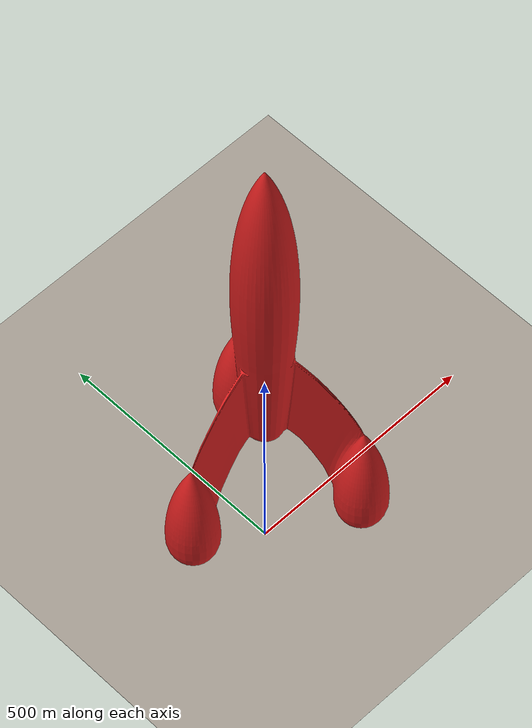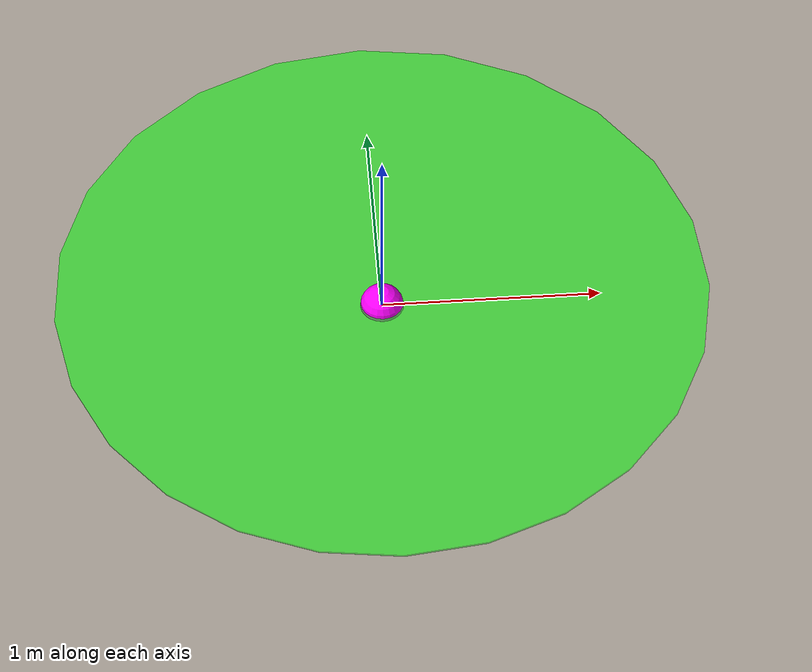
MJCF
<mujoco model="flat_world">
  <compiler angle="radian" coordinate="local"
            meshdir="../meshes" texturedir="../textures"/>
  <option timestep="0.01" gravity="0 0 -9.81"/>

  <default>
    <geom margin="0" solref="0.002 1" solimp="0.99 0.995 0.0005" condim="3"/>
  </default>

  <contact>
    <pair geom1="rocket_mesh" geom2="flat_ground"
          margin="0"
          solref="0.001 1"
          solimp="0.999 0.9995 0.0001"/>
  </contact>

  <asset>
    <mesh name="tintin_mesh" file="tintin_rocket_new.obj" scale="1 1 1"/>
    <material name="flame_core_mat"  rgba="1.0 0.95 0.75 0.95" emission="0.8" specular="0.05" shininess="0.2"/>
    <material name="flame_plume_mat" rgba="1.0 0.55 0.15 0.35" emission="0.4" specular="0.0"  shininess="0.05"/>
    <material name="rocket_red" rgba="0.85 0.12 0.12 1"/>
    <material name="goal_green" rgba="0.0 1.0 0.0 0.55" emission="0.2"/>
  </asset>

  <worldbody>
    <!-- FLAT GROUND: big thin box; top surface at z=0 -->
    <!-- box size = half-dims, so height=0.05 gives 0.1 m thick slab -->
    <geom name="flat_ground" type="box" pos="0 0 -0.05" size="5000 5000 0.05"
          contype="1" conaffinity="1" condim="3"
          friction="1.1 0.005 0.0001" rgba="0.65 0.62 0.58 1.0"/>

    <site name="origin_marker" pos="0 0 0" size="0.1" rgba="1 0 1 1"/>

    <!-- Goal marker: green circle with an X -->
    <body name="goal_marker" pos="0 0 0">
      <site name="goal_site" pos="0 0 0" size="0.05" rgba="0 1 0 0.8" />
      <!-- ring: cylinder size = [radius half_length] -->
      <geom name="goal_ring" type="cylinder" pos="0 0 0.01" size="1.5 0.005"
            material="goal_green" contype="0" conaffinity="0"/>
      <!-- X bars (rotate ±45°) ; box size = half-dims -->
      <geom type="box" name="goal_x1" pos="0 0 0.012" size="1.2 0.03 0.002"
            rgba="0 1 0 0.8" euler="0 0 0.7854" contype="0" conaffinity="0"/>
      <geom type="box" name="goal_x2" pos="0 0 0.012" size="1.2 0.03 0.002"
            rgba="0 1 0 0.8" euler="0 0 -0.7854" contype="0" conaffinity="0"/>
    </body>

    <!-- Rocket (Y-up mesh -> rotate to Z-up) -->
    <body name="rocket_root" pos="0 0 150" euler="1.5708 0 0">
      <joint name="free" type="free"/>

      <geom name="rocket_mesh" type="mesh" mesh="tintin_mesh" material="rocket_red"
            contype="1" conaffinity="1" condim="3"
            friction="1.1 0.005 0.0001" mass="50"/>

      <!-- flame visuals (non-colliding) -->
      <geom name="flame_core"  type="ellipsoid" pos="0 0 100" size="50 50 100"
            material="flame_core_mat"  contype="0" conaffinity="0" rgba="1 0.9 0.6 0.0"/>
      <geom name="flame_plume" type="cylinder"  pos="0 0 100" size="100 200"
            material="flame_plume_mat" contype="0" conaffinity="0" rgba="1 0.5 0.1 0.0"/>

      <site name="engine_site" pos="0 0 0.32" size="0.01" rgba="0 0 0 0"/>
    </body>
  </worldbody>
</mujoco>
